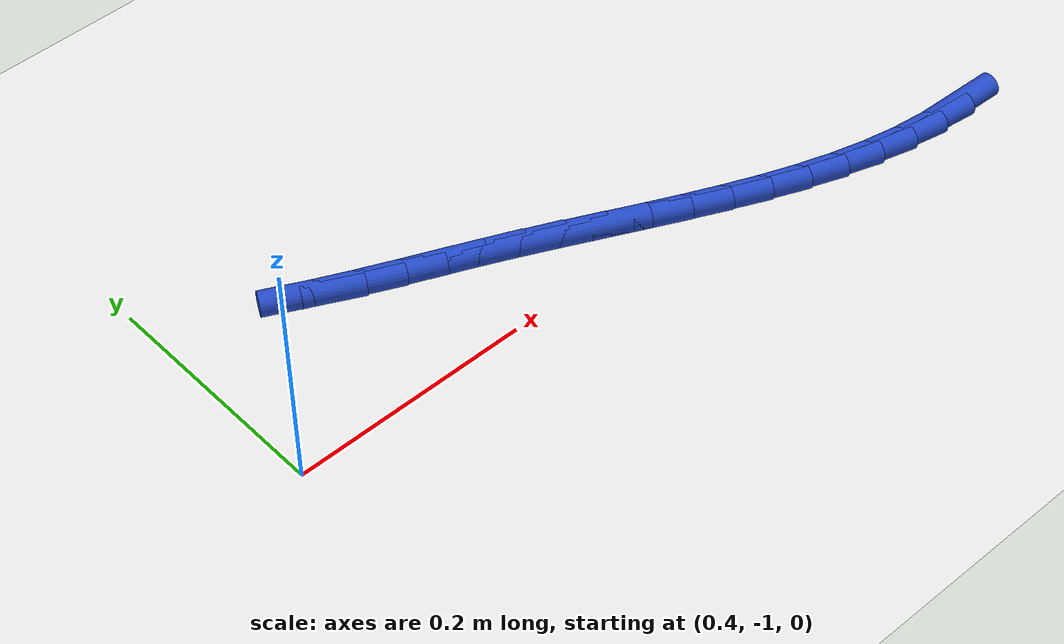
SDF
<sdf version="1.6">
 <world name="default">
  <model name="ground_plane">
   <static>1</static>
   <link name="link">
    <collision name="collision">
     <geometry><plane><normal>0 0 1</normal><size>100 100</size></plane></geometry>
     <surface><friction><ode><mu>100</mu><mu2>50</mu2></ode></friction></surface>
    </collision>
    <visual name="visual">
     <cast_shadows>0</cast_shadows>
     <geometry><plane><normal>0 0 1</normal><size>100 100</size></plane></geometry>
     <material>
      <script><uri>file://media/materials/scripts/gazebo.material</uri><name>Gazebo/WhiteGlow</name></script>
     </material>
    </visual>
   </link>
  </model>
  <model name="line">
   <link name="link_159">
    <pose>1.0045178368704348 -1.0660294659217548 0.01 0 1.57 -0.03993902472985521</pose>
    <collision name="collision">
     <geometry><cylinder><radius>0.01</radius><length>0.08</length></cylinder></geometry>
    </collision>
    <visual name="visual">
     <material>
      <script><name>Gazebo/Blue</name><uri>file://media/materials/scripts/gazebo.material</uri></script>
     </material>
     <geometry><cylinder><radius>0.01</radius><length>0.08</length></cylinder></geometry>
    </visual>
   </link>
   <link name="link_160">
    <pose>0.9748245004938466 -1.0648429120579443 0.01 0 1.57 -0.12781047196575035</pose>
    <collision name="collision">
     <geometry><cylinder><radius>0.01</radius><length>0.08</length></cylinder></geometry>
    </collision>
    <visual name="visual">
     <material>
      <script><name>Gazebo/Blue</name><uri>file://media/materials/scripts/gazebo.material</uri></script>
     </material>
     <geometry><cylinder><radius>0.01</radius><length>0.08</length></cylinder></geometry>
    </visual>
   </link>
   <link name="link_161">
    <pose>0.9451598530902657 -1.0610306785628678 0.01 0 1.57 -0.204468760796845</pose>
    <collision name="collision">
     <geometry><cylinder><radius>0.01</radius><length>0.08</length></cylinder></geometry>
    </collision>
    <visual name="visual">
     <material>
      <script><name>Gazebo/Blue</name><uri>file://media/materials/scripts/gazebo.material</uri></script>
     </material>
     <geometry><cylinder><radius>0.01</radius><length>0.08</length></cylinder></geometry>
    </visual>
   </link>
   <link name="link_162">
    <pose>0.9155282436225829 -1.0548860702910612 0.01 0 1.57 -0.2697877004672199</pose>
    <collision name="collision">
     <geometry><cylinder><radius>0.01</radius><length>0.08</length></cylinder></geometry>
    </collision>
    <visual name="visual">
     <material>
      <script><name>Gazebo/Blue</name><uri>file://media/materials/scripts/gazebo.material</uri></script>
     </material>
     <geometry><cylinder><radius>0.01</radius><length>0.08</length></cylinder></geometry>
    </visual>
   </link>
   <link name="link_163">
    <pose>0.885934021053688 -1.0467023920970593 0.01 0 1.57 -0.32414278520804807</pose>
    <collision name="collision">
     <geometry><cylinder><radius>0.01</radius><length>0.08</length></cylinder></geometry>
    </collision>
    <visual name="visual">
     <material>
      <script><name>Gazebo/Blue</name><uri>file://media/materials/scripts/gazebo.material</uri></script>
     </material>
     <geometry><cylinder><radius>0.01</radius><length>0.08</length></cylinder></geometry>
    </visual>
   </link>
   <link name="link_164">
    <pose>0.8563815343464709 -1.036772948835398 0.01 0 1.57 -0.3681562237162512</pose>
    <collision name="collision">
     <geometry><cylinder><radius>0.01</radius><length>0.08</length></cylinder></geometry>
    </collision>
    <visual name="visual">
     <material>
      <script><name>Gazebo/Blue</name><uri>file://media/materials/scripts/gazebo.material</uri></script>
     </material>
     <geometry><cylinder><radius>0.01</radius><length>0.08</length></cylinder></geometry>
    </visual>
   </link>
   <link name="link_165">
    <pose>0.8268751324638236 -1.0253910453606139 0.01 0 1.57 -0.4025109177305783</pose>
    <collision name="collision">
     <geometry><cylinder><radius>0.01</radius><length>0.08</length></cylinder></geometry>
    </collision>
    <visual name="visual">
     <material>
      <script><name>Gazebo/Blue</name><uri>file://media/materials/scripts/gazebo.material</uri></script>
     </material>
     <geometry><cylinder><radius>0.01</radius><length>0.08</length></cylinder></geometry>
    </visual>
   </link>
   <link name="link_166">
    <pose>0.7974191643686355 -1.0128499865272418 0.01 0 1.57 -0.42783143388059874</pose>
    <collision name="collision">
     <geometry><cylinder><radius>0.01</radius><length>0.08</length></cylinder></geometry>
    </collision>
    <visual name="visual">
     <material>
      <script><name>Gazebo/Blue</name><uri>file://media/materials/scripts/gazebo.material</uri></script>
     </material>
     <geometry><cylinder><radius>0.01</radius><length>0.08</length></cylinder></geometry>
    </visual>
   </link>
   <link name="link_167">
    <pose>0.7680179790237972 -0.9994430771898177 0.01 0 1.57 -0.44461500722758857</pose>
    <collision name="collision">
     <geometry><cylinder><radius>0.01</radius><length>0.08</length></cylinder></geometry>
    </collision>
    <visual name="visual">
     <material>
      <script><name>Gazebo/Blue</name><uri>file://media/materials/scripts/gazebo.material</uri></script>
     </material>
     <geometry><cylinder><radius>0.01</radius><length>0.08</length></cylinder></geometry>
    </visual>
   </link>
   <link name="link_168">
    <pose>0.7386759253921985 -0.9854636222028772 0.01 0 1.57 -0.4531944761457175</pose>
    <collision name="collision">
     <geometry><cylinder><radius>0.01</radius><length>0.08</length></cylinder></geometry>
    </collision>
    <visual name="visual">
     <material>
      <script><name>Gazebo/Blue</name><uri>file://media/materials/scripts/gazebo.material</uri></script>
     </material>
     <geometry><cylinder><radius>0.01</radius><length>0.08</length></cylinder></geometry>
    </visual>
   </link>
   <link name="link_169">
    <pose>0.7093973524367303 -0.9712049264209557 0.01 0 1.57 -0.45371923822977206</pose>
    <collision name="collision">
     <geometry><cylinder><radius>0.01</radius><length>0.08</length></cylinder></geometry>
    </collision>
    <visual name="visual">
     <material>
      <script><name>Gazebo/Blue</name><uri>file://media/materials/scripts/gazebo.material</uri></script>
     </material>
     <geometry><cylinder><radius>0.01</radius><length>0.08</length></cylinder></geometry>
    </visual>
   </link>
   <link name="link_170">
    <pose>0.6801866091202821 -0.9569602946985889 0.01 0 1.57 -0.44614541883393116</pose>
    <collision name="collision">
     <geometry><cylinder><radius>0.01</radius><length>0.08</length></cylinder></geometry>
    </collision>
    <visual name="visual">
     <material>
      <script><name>Gazebo/Blue</name><uri>file://media/materials/scripts/gazebo.material</uri></script>
     </material>
     <geometry><cylinder><radius>0.01</radius><length>0.08</length></cylinder></geometry>
    </visual>
   </link>
   <link name="link_171">
    <pose>0.6510480444057455 -0.9430230318903129 0.01 0 1.57 -0.43083307023790535</pose>
    <collision name="collision">
     <geometry><cylinder><radius>0.01</radius><length>0.08</length></cylinder></geometry>
    </collision>
    <visual name="visual">
     <material>
      <script><name>Gazebo/Blue</name><uri>file://media/materials/scripts/gazebo.material</uri></script>
     </material>
     <geometry><cylinder><radius>0.01</radius><length>0.08</length></cylinder></geometry>
    </visual>
   </link>
   <link name="link_172">
    <pose>0.6219890742690348 -0.9296666661146413 0.01 0 1.57 -0.41749954107156845</pose>
    <collision name="collision">
     <geometry><cylinder><radius>0.01</radius><length>0.08</length></cylinder></geometry>
    </collision>
    <visual name="visual">
     <material>
      <script><name>Gazebo/Blue</name><uri>file://media/materials/scripts/gazebo.material</uri></script>
     </material>
     <geometry><cylinder><radius>0.01</radius><length>0.08</length></cylinder></geometry>
    </visual>
   </link>
   <link name="link_173">
    <pose>0.593067805122513 -0.9168378630436559 0.01 0 1.57 -0.41456931693800064</pose>
    <collision name="collision">
     <geometry><cylinder><radius>0.01</radius><length>0.08</length></cylinder></geometry>
    </collision>
    <visual name="visual">
     <material>
      <script><name>Gazebo/Blue</name><uri>file://media/materials/scripts/gazebo.material</uri></script>
     </material>
     <geometry><cylinder><radius>0.01</radius><length>0.08</length></cylinder></geometry>
    </visual>
   </link>
   <link name="link_174">
    <pose>0.564383974873662 -0.9042148398353382 0.01 0 1.57 -0.42260566516623327</pose>
    <collision name="collision">
     <geometry><cylinder><radius>0.01</radius><length>0.08</length></cylinder></geometry>
    </collision>
    <visual name="visual">
     <material>
      <script><name>Gazebo/Blue</name><uri>file://media/materials/scripts/gazebo.material</uri></script>
     </material>
     <geometry><cylinder><radius>0.01</radius><length>0.08</length></cylinder></geometry>
    </visual>
   </link>
   <link name="link_175">
    <pose>0.5360385546113161 -0.8914678618385785 0.01 0 1.57 -0.4418477816252048</pose>
    <collision name="collision">
     <geometry><cylinder><radius>0.01</radius><length>0.08</length></cylinder></geometry>
    </collision>
    <visual name="visual">
     <material>
      <script><name>Gazebo/Blue</name><uri>file://media/materials/scripts/gazebo.material</uri></script>
     </material>
     <geometry><cylinder><radius>0.01</radius><length>0.08</length></cylinder></geometry>
    </visual>
   </link>
   <link name="link_176">
    <pose>0.5081325154243084 -0.878267194402267 0.01 0 1.57 -0.4724153672824977</pose>
    <collision name="collision">
     <geometry><cylinder><radius>0.01</radius><length>0.08</length></cylinder></geometry>
    </collision>
    <visual name="visual">
     <material>
      <script><name>Gazebo/Blue</name><uri>file://media/materials/scripts/gazebo.material</uri></script>
     </material>
     <geometry><cylinder><radius>0.01</radius><length>0.08</length></cylinder></geometry>
    </visual>
   </link>
  </model>
 </world>
</sdf>
